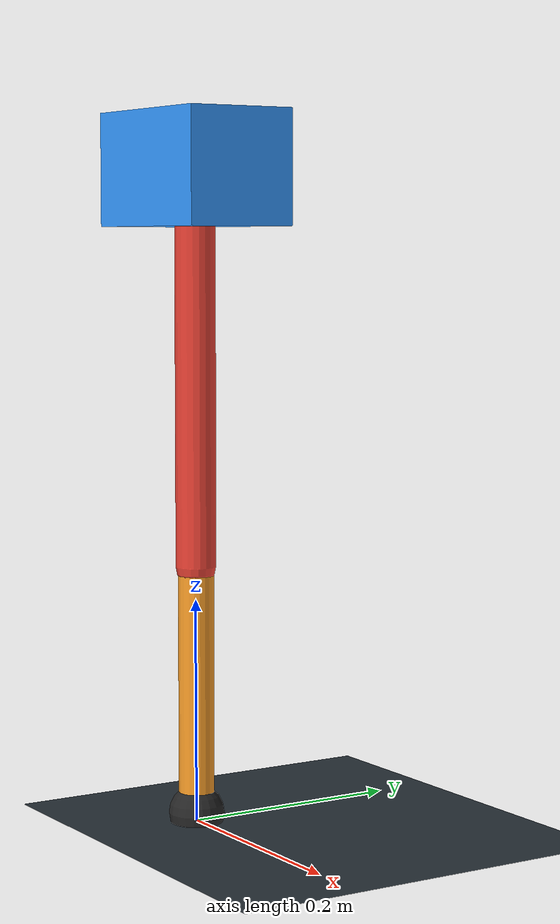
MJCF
<mujoco model="single_axis_two_bar">
  <compiler angle="radian" inertiafromgeom="true"/>
  <option timestep="0.001" integrator="implicitfast" gravity="0 0 -9.81"/>
  <default>
    <joint damping="0.08"/>
    <geom friction="1.2 0.01 0.0001" condim="3"/>
  </default>
  <worldbody>
    <geom name="floor" type="plane" size="5 5 0.1" rgba="0.18 0.22 0.25 1"/>
    <body name="carriage" pos="0 0 0.5800158823187825">
      <joint name="pole_slide" type="slide" axis="0 0 1"/>
      <geom name="payload" type="box" size="0.08 0.05 0.05" mass="2.5424868662378577" rgba="0.2 0.6 1 1"/>
      <body name="thigh" pos="0 0 0">
        <joint name="hip" type="hinge" axis="0 1 0"/>
        <geom name="thigh_link" type="capsule" fromto="0 0 0 0 0 -0.34998151720543436" size="0.018" mass="0.24936645560660117" rgba="0.9 0.25 0.2 1"/>
        <body name="shank" pos="0 0 -0.34998151720543436">
          <joint name="knee" type="hinge" axis="0 1 0"/>
          <geom name="shank_link" type="capsule" fromto="0 0 0 0 0 -0.22219980477269194" size="0.016" mass="0.15832029701191477" rgba="0.95 0.6 0.15 1"/>
          <geom name="foot" type="sphere" pos="0 0 -0.22219980477269194" size="0.025" mass="0.03" rgba="0.15 0.15 0.15 1"/>
          <site name="toe" pos="0 0 -0.22219980477269194" size="0.008"/>
        </body>
      </body>
    </body>
  </worldbody>
  <actuator>
    <motor name="hip_motor" joint="hip" ctrlrange="-33.17887226333731 33.17887226333731"/>
    <motor name="knee_motor" joint="knee" ctrlrange="-109.28339892337083 109.28339892337083"/>
  </actuator>
</mujoco>
